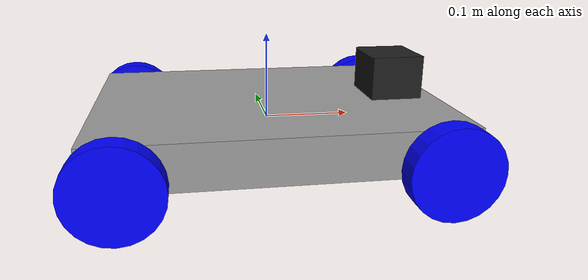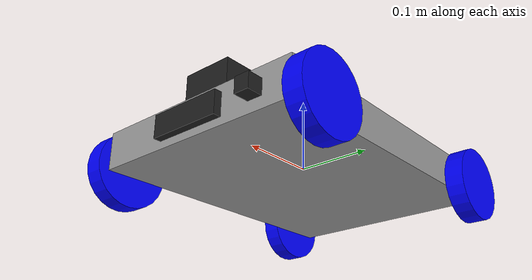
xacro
<?xml version="1.0"?>
<robot name="four_wheel_bot" xmlns:xacro="http://www.ros.org/wiki/xacro">

  <xacro:property name="wheel_radius" value="0.05"/>
  <xacro:property name="wheel_length" value="0.025"/>
  <xacro:property name="wheel_mass" value="0.2"/>
  <xacro:property name="base_length" value="0.4"/>
  <xacro:property name="base_width" value="0.3"/>
  <xacro:property name="base_height" value="0.05"/>
  <xacro:property name="base_mass" value="5.0"/>
  <xacro:include filename="$(find my_ekf)/urdf/sensors.urdf.xacro"/>
  <xacro:include filename="$(find my_ekf)/urdf/setup_sim.gazebo"/>
  <gazebo>
      <plugin name="gazebo_ros_control" filename="libgazebo_ros_control.so">
        <robotNamespace>/platform</robotNamespace>
      </plugin>
  </gazebo>

  <!-- Base link -->
  <link name="base_link">
    <visual>
      <geometry>
        <box size="${base_length} ${base_width} ${base_height}"/>
      </geometry>
      <material name="gray">
        <color rgba="0.6 0.6 0.6 1"/>
      </material>
    </visual>
    <collision>
      <geometry>
        <box size="${base_length} ${base_width} ${base_height}"/>
      </geometry>
    </collision>
    <inertial>
      <mass value="${base_mass}"/>
      <inertia ixx="${(1/12) * base_mass * (base_width*base_width + base_height*base_height)}"
               ixy="0.0" ixz="0.0"
               iyy="${(1/12) * base_mass * (base_length*base_length + base_height*base_height)}"
               iyz="0.0"
               izz="${(1/12) * base_mass * (base_length*base_length + base_width*base_width)}"/>
    </inertial>
    <gazebo>
      <plugin name="diff_drive_controller" filename="libgazebo_ros_diff_drive.so">
        <rosDebugLevel>na</rosDebugLevel>

        <!-- Topics -->
        <publishWheelTF>false</publishWheelTF>
        <publishTf>true</publishTf>
        <publishOdom>true</publishOdom>
        <odometryTopic>odom</odometryTopic>

        <!-- Robot structure -->
        <leftJoint>rear_left_wheel_joint</leftJoint>
        <rightJoint>rear_right_wheel_joint</rightJoint>
        <wheelSeparation>0.3125</wheelSeparation>
        <wheelDiameter>0.1</wheelDiameter>

        <!-- Coordinate frames -->
        <robotNamespace>/platform</robotNamespace>
        <frameName>odom</frameName>
        <odometryFrame>odom</odometryFrame>
        <robotBaseFrame>base_link</robotBaseFrame>

        <!-- Update rates -->
        <updateRate>50.0</updateRate>
      </plugin>
  </gazebo>
  </link>

  <!-- Define wheels -->
  <xacro:macro name="wheel" params="name x y">
    <link name="${name}">
      <visual>
        <geometry>
          <cylinder length="${wheel_length}" radius="${wheel_radius}"/>
        </geometry>
        <origin xyz="0 0 0" rpy="1.5708 0 0"/>
        <material name="blue">
          <color rgba="0 0 1 1"/>
        </material>
      </visual>
      <collision>
        <geometry>
          <cylinder length="${wheel_length}" radius="${wheel_radius}"/>
        </geometry>
        <origin xyz="0 0 0" rpy="1.5708 0 0"/>
      </collision>
      <inertial>
          <mass value="${wheel_mass}" />
          <inertia ixx="${(2/5) * wheel_mass * (wheel_radius*wheel_radius)}" ixy="0.0" ixz="0.0"
                  iyy="${(2/5) * wheel_mass * (wheel_radius*wheel_radius)}" iyz="0.0"
                  izz="${(2/5) * wheel_mass * (wheel_radius*wheel_radius)}" />
        </inertial>
    </link>

    <joint name="${name}_joint" type="continuous">
      <parent link="base_link"/>
      <child link="${name}"/>
      <origin xyz="${x} ${y} -0.015" rpy="0 0 0"/>
      <axis xyz="0 1 0"/>
      <limit effort="10" velocity="10"/>
      <joint_properties damping="0.0" friction="0.0"/>
    </joint>
  </xacro:macro>

  <!-- Instantiate wheels -->
  <xacro:wheel name="front_left_wheel" x="${(base_length-wheel_radius-0.02)/2}" y="${(base_width+wheel_length)/2}"/>
  <xacro:wheel name="front_right_wheel" x="${(base_length-wheel_radius-0.02)/2}" y="${-(base_width+wheel_length)/2}"/>
  <xacro:wheel name="rear_left_wheel" x="${-(base_length-wheel_radius-0.02)/2}" y="${(base_width+wheel_length)/2}"/>
  <xacro:wheel name="rear_right_wheel" x="${-(base_length-wheel_radius-0.02)/2}" y="${-(base_width+wheel_length)/2}"/>

  <!-- Transmissions (assuming left and right wheel drive) -->
  <transmission name="left_wheel_trans">
    <type>transmission_interface/SimpleTransmission</type>
    <joint name="rear_left_wheel_joint">
      <hardwareInterface>EffortJointInterface</hardwareInterface>
    </joint>
    <actuator name="left_motor">
      <hardwareInterface>EffortJointInterface</hardwareInterface>
      <mechanicalReduction>1</mechanicalReduction>
    </actuator>
  </transmission>

  <transmission name="right_wheel_trans">
    <type>transmission_interface/SimpleTransmission</type>
    <joint name="rear_right_wheel_joint">
      <hardwareInterface>EffortJointInterface</hardwareInterface>
    </joint>
    <actuator name="right_motor">
      <hardwareInterface>EffortJointInterface</hardwareInterface>
      <mechanicalReduction>1</mechanicalReduction>
    </actuator>
  </transmission>

</robot>

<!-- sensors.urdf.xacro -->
<robot xmlns:xacro="http://www.ros.org/wiki/xacro">

    <link name="lidar_link">
    <visual>
        <geometry>
        <box size="0.06 0.07 0.05"/>
        </geometry>
        <material name="black"/>
    </visual>
    </link>
    <joint name="lidar_joint" type="fixed">
    <parent link="base_link"/>
    <child link="lidar_link"/>
    <origin xyz="0.15 0 0.05" rpy="0 0 0"/>
    </joint>

    <link name="ultrasound_link">
    <visual>
        <geometry>
        <box size="0.01 0.1 0.03"/>
        </geometry>
        <material name="black"/>
    </visual>
    </link>
    <joint name="ultrasound_joint" type="fixed">
    <parent link="base_link"/>
    <child link="ultrasound_link"/>
    <origin xyz="0.205 0 0.0" rpy="0 0 0"/>
    </joint>

    <link name="camera_link">
    <visual>
        <geometry>
        <box size="0.02 0.02 0.02"/>
        </geometry>
        <material name="black"/>
    </visual>
    </link>
    <joint name="camera_joint" type="fixed">
    <parent link="base_link"/>
    <child link="camera_link"/>
    <origin xyz="0.21 0.1 0.0" rpy="0 0 0"/>
    </joint>

</robot>
